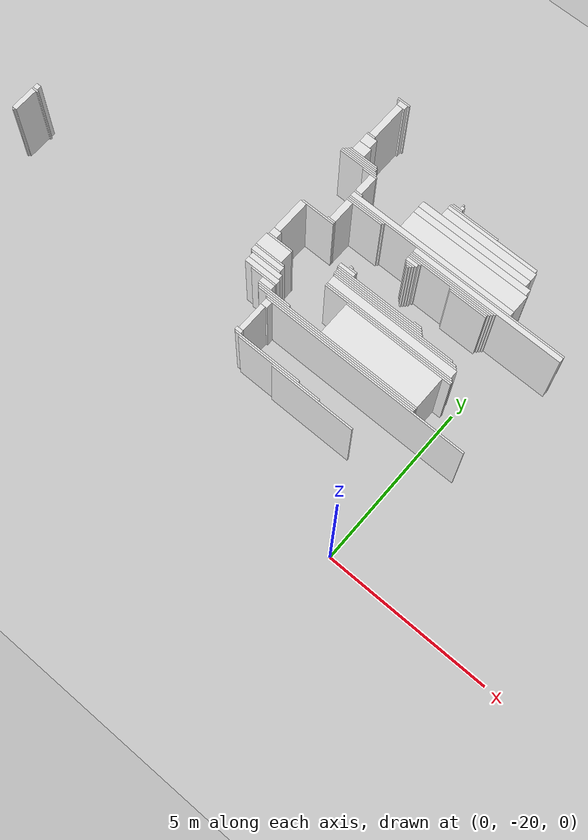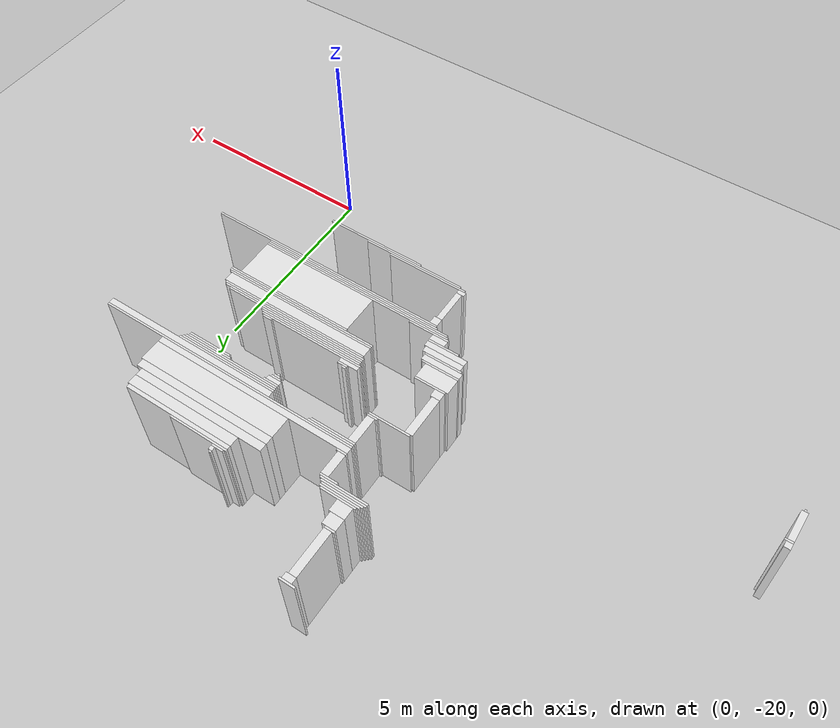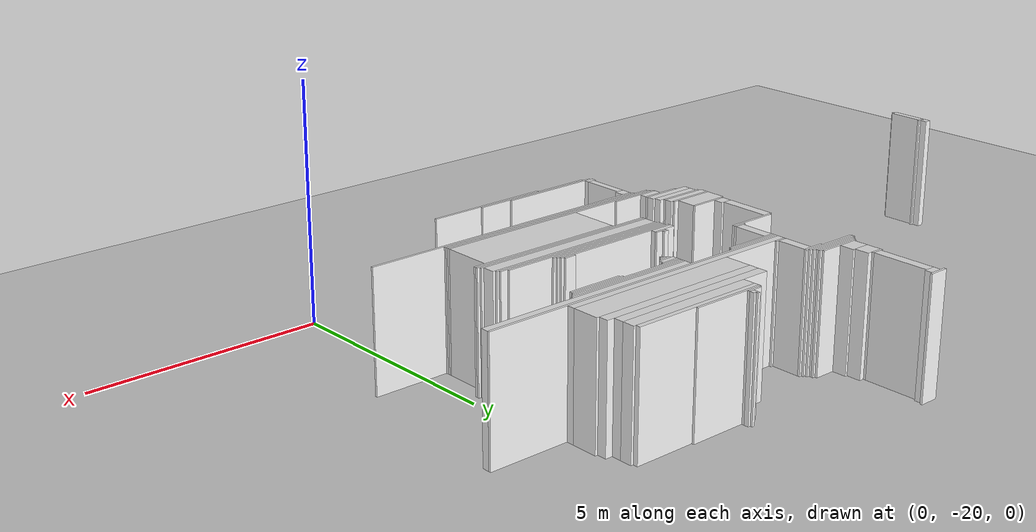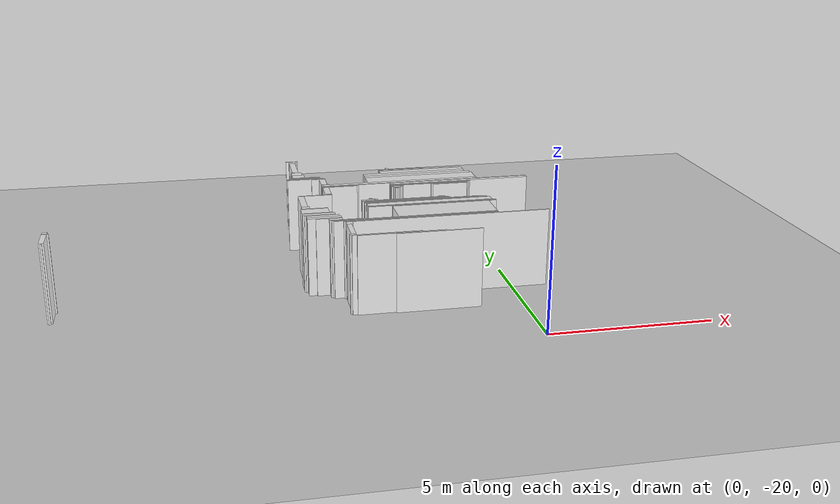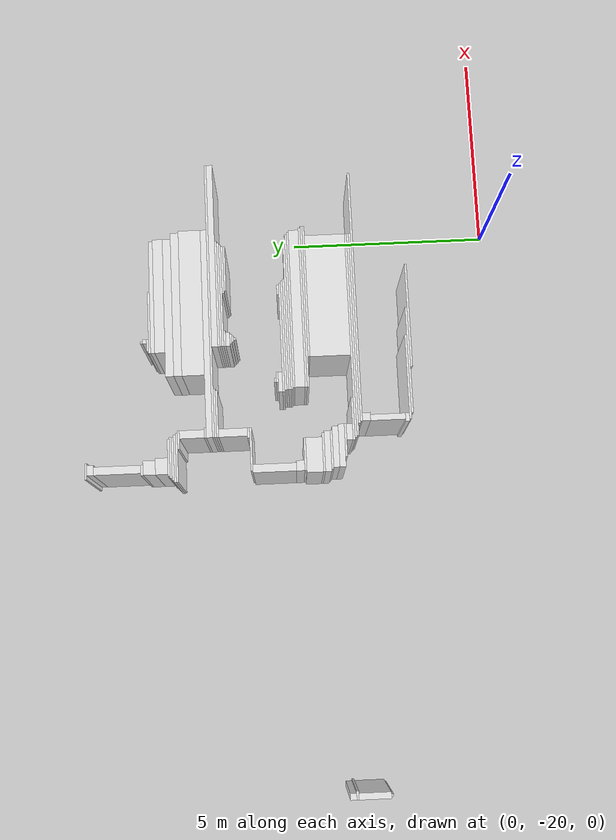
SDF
<sdf version="1.7">
 <world name="occupancy_map_world">
  <model name="ground_plane">
   <static>true</static>
   <link name="link">
    <collision name="collision">
     <geometry><plane><normal>0 0 1</normal><size>32.46 49.62000000000001</size></plane></geometry>
    </collision>
    <visual name="visual">
     <geometry><plane><normal>0 0 1</normal><size>32.46 49.62000000000001</size></plane></geometry>
     <material>
      <script><uri>file://media/materials/scripts/gazebo.material</uri><name>Gazebo/Grey</name></script>
     </material>
    </visual>
   </link>
  </model>
  <model name="wall_8">
   <static>true</static>
   <pose>-2.349999999999998 -14.8 1.25 0 0 0.0</pose>
   <link name="link">
    <collision name="collision"><geometry><box><size>3.95 0.05 2.5</size></box></geometry></collision>
    <visual name="visual">
     <geometry><box><size>3.95 0.05 2.5</size></box></geometry>
     <material>
      <script><uri>file://media/materials/scripts/gazebo.material</uri><name>Gazebo/White</name></script>
     </material>
    </visual>
   </link>
  </model>
  <model name="wall_84">
   <static>true</static>
   <pose>-5.124999999999998 -16.525 1.25 0 0 0.0</pose>
   <link name="link">
    <collision name="collision"><geometry><box><size>0.2 0.2 2.5</size></box></geometry></collision>
    <visual name="visual">
     <geometry><box><size>0.2 0.2 2.5</size></box></geometry>
     <material>
      <script><uri>file://media/materials/scripts/gazebo.material</uri><name>Gazebo/White</name></script>
     </material>
    </visual>
   </link>
  </model>
  <model name="wall_180">
   <static>true</static>
   <pose>-1.9249999999999972 -13.1 1.25 0 0 0.0</pose>
   <link name="link">
    <collision name="collision"><geometry><box><size>2.6 0.05 2.5</size></box></geometry></collision>
    <visual name="visual">
     <geometry><box><size>2.6 0.05 2.5</size></box></geometry>
     <material>
      <script><uri>file://media/materials/scripts/gazebo.material</uri><name>Gazebo/White</name></script>
     </material>
    </visual>
   </link>
  </model>
  <model name="wall_245">
   <static>true</static>
   <pose>-5.349999999999998 -12.6 1.25 0 0 0.0</pose>
   <link name="link">
    <collision name="collision"><geometry><box><size>0.25 0.05 2.5</size></box></geometry></collision>
    <visual name="visual">
     <geometry><box><size>0.25 0.05 2.5</size></box></geometry>
     <material>
      <script><uri>file://media/materials/scripts/gazebo.material</uri><name>Gazebo/White</name></script>
     </material>
    </visual>
   </link>
  </model>
  <model name="wall_247">
   <static>true</static>
   <pose>-5.374999999999998 -12.275 1.25 0 0 0.0</pose>
   <link name="link">
    <collision name="collision">
     <geometry><box><size>0.2 0.6000000000000001 2.5</size></box></geometry>
    </collision>
    <visual name="visual">
     <geometry><box><size>0.2 0.6000000000000001 2.5</size></box></geometry>
     <material>
      <script><uri>file://media/materials/scripts/gazebo.material</uri><name>Gazebo/White</name></script>
     </material>
    </visual>
   </link>
  </model>
  <model name="wall_248">
   <static>true</static>
   <pose>-5.374999999999998 -13.274999999999999 1.25 0 0 0.0</pose>
   <link name="link">
    <collision name="collision">
     <geometry><box><size>0.2 0.7000000000000001 2.5</size></box></geometry>
    </collision>
    <visual name="visual">
     <geometry><box><size>0.2 0.7000000000000001 2.5</size></box></geometry>
     <material>
      <script><uri>file://media/materials/scripts/gazebo.material</uri><name>Gazebo/White</name></script>
     </material>
    </visual>
   </link>
  </model>
  <model name="wall_546">
   <static>true</static>
   <pose>-5.149999999999999 -17.05 1.25 0 0 0.0</pose>
   <link name="link">
    <collision name="collision">
     <geometry><box><size>0.15000000000000002 0.8500000000000001 2.5</size></box></geometry>
    </collision>
    <visual name="visual">
     <geometry><box><size>0.15000000000000002 0.8500000000000001 2.5</size></box></geometry>
     <material>
      <script><uri>file://media/materials/scripts/gazebo.material</uri><name>Gazebo/White</name></script>
     </material>
    </visual>
   </link>
  </model>
  <model name="wall_554">
   <static>true</static>
   <pose>-5.174999999999997 -17.525 1.25 0 0 0.0</pose>
   <link name="link">
    <collision name="collision"><geometry><box><size>0.2 0.1 2.5</size></box></geometry></collision>
    <visual name="visual">
     <geometry><box><size>0.2 0.1 2.5</size></box></geometry>
     <material>
      <script><uri>file://media/materials/scripts/gazebo.material</uri><name>Gazebo/White</name></script>
     </material>
    </visual>
   </link>
  </model>
  <model name="wall_593">
   <static>true</static>
   <pose>-3.049999999999997 -11.1 1.25 0 0 0.0</pose>
   <link name="link">
    <collision name="collision"><geometry><box><size>0.05 0.05 2.5</size></box></geometry></collision>
    <visual name="visual">
     <geometry><box><size>0.05 0.05 2.5</size></box></geometry>
     <material>
      <script><uri>file://media/materials/scripts/gazebo.material</uri><name>Gazebo/White</name></script>
     </material>
    </visual>
   </link>
  </model>
  <model name="wall_594">
   <static>true</static>
   <pose>-3.049999999999997 -13.399999999999999 1.25 0 0 0.0</pose>
   <link name="link">
    <collision name="collision"><geometry><box><size>0.05 0.05 2.5</size></box></geometry></collision>
    <visual name="visual">
     <geometry><box><size>0.05 0.05 2.5</size></box></geometry>
     <material>
      <script><uri>file://media/materials/scripts/gazebo.material</uri><name>Gazebo/White</name></script>
     </material>
    </visual>
   </link>
  </model>
  <model name="wall_609">
   <static>true</static>
   <pose>-5.799999999999997 -13.7 1.25 0 0 0.0</pose>
   <link name="link">
    <collision name="collision"><geometry><box><size>1.05 0.05 2.5</size></box></geometry></collision>
    <visual name="visual">
     <geometry><box><size>1.05 0.05 2.5</size></box></geometry>
     <material>
      <script><uri>file://media/materials/scripts/gazebo.material</uri><name>Gazebo/White</name></script>
     </material>
    </visual>
   </link>
  </model>
  <model name="wall_610">
   <static>true</static>
   <pose>-5.799999999999997 -15.899999999999999 1.25 0 0 0.0</pose>
   <link name="link">
    <collision name="collision">
     <geometry><box><size>1.05 0.15000000000000002 2.5</size></box></geometry>
    </collision>
    <visual name="visual">
     <geometry><box><size>1.05 0.15000000000000002 2.5</size></box></geometry>
     <material>
      <script><uri>file://media/materials/scripts/gazebo.material</uri><name>Gazebo/White</name></script>
     </material>
    </visual>
   </link>
  </model>
  <model name="wall_611">
   <static>true</static>
   <pose>-6.174999999999997 -9.7 1.25 0 0 0.0</pose>
   <link name="link">
    <collision name="collision"><geometry><box><size>0.4 0.05 2.5</size></box></geometry></collision>
    <visual name="visual">
     <geometry><box><size>0.4 0.05 2.5</size></box></geometry>
     <material>
      <script><uri>file://media/materials/scripts/gazebo.material</uri><name>Gazebo/White</name></script>
     </material>
    </visual>
   </link>
  </model>
  <model name="wall_612">
   <static>true</static>
   <pose>-6.149999999999999 -9.799999999999999 1.25 0 0 0.0</pose>
   <link name="link">
    <collision name="collision">
     <geometry><box><size>0.25 0.15000000000000002 2.5</size></box></geometry>
    </collision>
    <visual name="visual">
     <geometry><box><size>0.25 0.15000000000000002 2.5</size></box></geometry>
     <material>
      <script><uri>file://media/materials/scripts/gazebo.material</uri><name>Gazebo/White</name></script>
     </material>
    </visual>
   </link>
  </model>
  <model name="wall_617">
   <static>true</static>
   <pose>-6.174999999999997 -10.45 1.25 0 0 0.0</pose>
   <link name="link">
    <collision name="collision">
     <geometry><box><size>0.2 1.1500000000000001 2.5</size></box></geometry>
    </collision>
    <visual name="visual">
     <geometry><box><size>0.2 1.1500000000000001 2.5</size></box></geometry>
     <material>
      <script><uri>file://media/materials/scripts/gazebo.material</uri><name>Gazebo/White</name></script>
     </material>
    </visual>
   </link>
  </model>
  <model name="wall_624">
   <static>true</static>
   <pose>-6.1999999999999975 -11.049999999999999 1.25 0 0 0.0</pose>
   <link name="link">
    <collision name="collision"><geometry><box><size>0.25 0.05 2.5</size></box></geometry></collision>
    <visual name="visual">
     <geometry><box><size>0.25 0.05 2.5</size></box></geometry>
     <material>
      <script><uri>file://media/materials/scripts/gazebo.material</uri><name>Gazebo/White</name></script>
     </material>
    </visual>
   </link>
  </model>
  <model name="wall_628">
   <static>true</static>
   <pose>-6.149999999999999 -11.225 1.25 0 0 0.0</pose>
   <link name="link">
    <collision name="collision">
     <geometry><box><size>0.35000000000000003 0.30000000000000004 2.5</size></box></geometry>
    </collision>
    <visual name="visual">
     <geometry><box><size>0.35000000000000003 0.30000000000000004 2.5</size></box></geometry>
     <material>
      <script><uri>file://media/materials/scripts/gazebo.material</uri><name>Gazebo/White</name></script>
     </material>
    </visual>
   </link>
  </model>
  <model name="wall_630">
   <static>true</static>
   <pose>-3.0249999999999986 -11.174999999999999 1.25 0 0 0.0</pose>
   <link name="link">
    <collision name="collision"><geometry><box><size>0.1 0.1 2.5</size></box></geometry></collision>
    <visual name="visual">
     <geometry><box><size>0.1 0.1 2.5</size></box></geometry>
     <material>
      <script><uri>file://media/materials/scripts/gazebo.material</uri><name>Gazebo/White</name></script>
     </material>
    </visual>
   </link>
  </model>
  <model name="wall_635">
   <static>true</static>
   <pose>-3.1249999999999982 -11.25 1.25 0 0 0.0</pose>
   <link name="link">
    <collision name="collision">
     <geometry><box><size>0.30000000000000004 0.05 2.5</size></box></geometry>
    </collision>
    <visual name="visual">
     <geometry><box><size>0.30000000000000004 0.05 2.5</size></box></geometry>
     <material>
      <script><uri>file://media/materials/scripts/gazebo.material</uri><name>Gazebo/White</name></script>
     </material>
    </visual>
   </link>
  </model>
  <model name="wall_636">
   <static>true</static>
   <pose>-2.549999999999997 -11.299999999999999 1.25 0 0 0.0</pose>
   <link name="link">
    <collision name="collision"><geometry><box><size>1.55 0.05 2.5</size></box></geometry></collision>
    <visual name="visual">
     <geometry><box><size>1.55 0.05 2.5</size></box></geometry>
     <material>
      <script><uri>file://media/materials/scripts/gazebo.material</uri><name>Gazebo/White</name></script>
     </material>
    </visual>
   </link>
  </model>
  <model name="wall_638">
   <static>true</static>
   <pose>-1.8999999999999986 -11.375 1.25 0 0 0.0</pose>
   <link name="link">
    <collision name="collision"><geometry><box><size>2.85 0.1 2.5</size></box></geometry></collision>
    <visual name="visual">
     <geometry><box><size>2.85 0.1 2.5</size></box></geometry>
     <material>
      <script><uri>file://media/materials/scripts/gazebo.material</uri><name>Gazebo/White</name></script>
     </material>
    </visual>
   </link>
  </model>
  <model name="wall_640">
   <static>true</static>
   <pose>-6.124999999999998 -11.525 1.25 0 0 0.0</pose>
   <link name="link">
    <collision name="collision">
     <geometry><box><size>0.4 0.30000000000000004 2.5</size></box></geometry>
    </collision>
    <visual name="visual">
     <geometry><box><size>0.4 0.30000000000000004 2.5</size></box></geometry>
     <material>
      <script><uri>file://media/materials/scripts/gazebo.material</uri><name>Gazebo/White</name></script>
     </material>
    </visual>
   </link>
  </model>
  <model name="wall_642">
   <static>true</static>
   <pose>-1.8749999999999964 -11.549999999999999 1.25 0 0 0.0</pose>
   <link name="link">
    <collision name="collision">
     <geometry><box><size>2.9000000000000004 0.25 2.5</size></box></geometry>
    </collision>
    <visual name="visual">
     <geometry><box><size>2.9000000000000004 0.25 2.5</size></box></geometry>
     <material>
      <script><uri>file://media/materials/scripts/gazebo.material</uri><name>Gazebo/White</name></script>
     </material>
    </visual>
   </link>
  </model>
  <model name="wall_646">
   <static>true</static>
   <pose>-5.924999999999997 -11.7 1.25 0 0 0.0</pose>
   <link name="link">
    <collision name="collision"><geometry><box><size>0.9 0.05 2.5</size></box></geometry></collision>
    <visual name="visual">
     <geometry><box><size>0.9 0.05 2.5</size></box></geometry>
     <material>
      <script><uri>file://media/materials/scripts/gazebo.material</uri><name>Gazebo/White</name></script>
     </material>
    </visual>
   </link>
  </model>
  <model name="wall_647">
   <static>true</static>
   <pose>-2.174999999999997 -11.775 1.25 0 0 0.0</pose>
   <link name="link">
    <collision name="collision"><geometry><box><size>3.5 0.2 2.5</size></box></geometry></collision>
    <visual name="visual">
     <geometry><box><size>3.5 0.2 2.5</size></box></geometry>
     <material>
      <script><uri>file://media/materials/scripts/gazebo.material</uri><name>Gazebo/White</name></script>
     </material>
    </visual>
   </link>
  </model>
  <model name="wall_648">
   <static>true</static>
   <pose>-5.924999999999997 -11.75 1.25 0 0 0.0</pose>
   <link name="link">
    <collision name="collision"><geometry><box><size>1.0 0.05 2.5</size></box></geometry></collision>
    <visual name="visual">
     <geometry><box><size>1.0 0.05 2.5</size></box></geometry>
     <material>
      <script><uri>file://media/materials/scripts/gazebo.material</uri><name>Gazebo/White</name></script>
     </material>
    </visual>
   </link>
  </model>
  <model name="wall_649">
   <static>true</static>
   <pose>-5.924999999999997 -15.55 1.25 0 0 0.0</pose>
   <link name="link">
    <collision name="collision">
     <geometry><box><size>1.0 0.15000000000000002 2.5</size></box></geometry>
    </collision>
    <visual name="visual">
     <geometry><box><size>1.0 0.15000000000000002 2.5</size></box></geometry>
     <material>
      <script><uri>file://media/materials/scripts/gazebo.material</uri><name>Gazebo/White</name></script>
     </material>
    </visual>
   </link>
  </model>
  <model name="wall_650">
   <static>true</static>
   <pose>-5.9499999999999975 -11.799999999999999 1.25 0 0 0.0</pose>
   <link name="link">
    <collision name="collision"><geometry><box><size>1.05 0.05 2.5</size></box></geometry></collision>
    <visual name="visual">
     <geometry><box><size>1.05 0.05 2.5</size></box></geometry>
     <material>
      <script><uri>file://media/materials/scripts/gazebo.material</uri><name>Gazebo/White</name></script>
     </material>
    </visual>
   </link>
  </model>
  <model name="wall_651">
   <static>true</static>
   <pose>-5.9499999999999975 -11.85 1.25 0 0 0.0</pose>
   <link name="link">
    <collision name="collision">
     <geometry><box><size>1.1500000000000001 0.05 2.5</size></box></geometry>
    </collision>
    <visual name="visual">
     <geometry><box><size>1.1500000000000001 0.05 2.5</size></box></geometry>
     <material>
      <script><uri>file://media/materials/scripts/gazebo.material</uri><name>Gazebo/White</name></script>
     </material>
    </visual>
   </link>
  </model>
  <model name="wall_652">
   <static>true</static>
   <pose>-5.924999999999997 -11.9 1.25 0 0 0.0</pose>
   <link name="link">
    <collision name="collision">
     <geometry><box><size>1.2000000000000002 0.05 2.5</size></box></geometry>
    </collision>
    <visual name="visual">
     <geometry><box><size>1.2000000000000002 0.05 2.5</size></box></geometry>
     <material>
      <script><uri>file://media/materials/scripts/gazebo.material</uri><name>Gazebo/White</name></script>
     </material>
    </visual>
   </link>
  </model>
  <model name="wall_653">
   <static>true</static>
   <pose>-2.099999999999998 -11.975 1.25 0 0 0.0</pose>
   <link name="link">
    <collision name="collision">
     <geometry><box><size>3.6500000000000004 0.2 2.5</size></box></geometry>
    </collision>
    <visual name="visual">
     <geometry><box><size>3.6500000000000004 0.2 2.5</size></box></geometry>
     <material>
      <script><uri>file://media/materials/scripts/gazebo.material</uri><name>Gazebo/White</name></script>
     </material>
    </visual>
   </link>
  </model>
  <model name="wall_654">
   <static>true</static>
   <pose>-5.499999999999998 -11.95 1.25 0 0 0.0</pose>
   <link name="link">
    <collision name="collision"><geometry><box><size>0.45 0.05 2.5</size></box></geometry></collision>
    <visual name="visual">
     <geometry><box><size>0.45 0.05 2.5</size></box></geometry>
     <material>
      <script><uri>file://media/materials/scripts/gazebo.material</uri><name>Gazebo/White</name></script>
     </material>
    </visual>
   </link>
  </model>
  <model name="wall_655">
   <static>true</static>
   <pose>-2.0749999999999975 -12.35 1.25 0 0 0.0</pose>
   <link name="link">
    <collision name="collision"><geometry><box><size>3.7 0.55 2.5</size></box></geometry></collision>
    <visual name="visual">
     <geometry><box><size>3.7 0.55 2.5</size></box></geometry>
     <material>
      <script><uri>file://media/materials/scripts/gazebo.material</uri><name>Gazebo/White</name></script>
     </material>
    </visual>
   </link>
  </model>
  <model name="wall_660">
   <static>true</static>
   <pose>-2.849999999999998 -12.7 1.25 0 0 0.0</pose>
   <link name="link">
    <collision name="collision">
     <geometry><box><size>5.25 0.15000000000000002 2.5</size></box></geometry>
    </collision>
    <visual name="visual">
     <geometry><box><size>5.25 0.15000000000000002 2.5</size></box></geometry>
     <material>
      <script><uri>file://media/materials/scripts/gazebo.material</uri><name>Gazebo/White</name></script>
     </material>
    </visual>
   </link>
  </model>
  <model name="wall_661">
   <static>true</static>
   <pose>-1.9999999999999982 -12.799999999999999 1.25 0 0 0.0</pose>
   <link name="link">
    <collision name="collision"><geometry><box><size>6.95 0.05 2.5</size></box></geometry></collision>
    <visual name="visual">
     <geometry><box><size>6.95 0.05 2.5</size></box></geometry>
     <material>
      <script><uri>file://media/materials/scripts/gazebo.material</uri><name>Gazebo/White</name></script>
     </material>
    </visual>
   </link>
  </model>
  <model name="wall_662">
   <static>true</static>
   <pose>-4.874999999999998 -12.85 1.25 0 0 0.0</pose>
   <link name="link">
    <collision name="collision">
     <geometry><box><size>1.2000000000000002 0.05 2.5</size></box></geometry>
    </collision>
    <visual name="visual">
     <geometry><box><size>1.2000000000000002 0.05 2.5</size></box></geometry>
     <material>
      <script><uri>file://media/materials/scripts/gazebo.material</uri><name>Gazebo/White</name></script>
     </material>
    </visual>
   </link>
  </model>
  <model name="wall_663">
   <static>true</static>
   <pose>-0.8749999999999964 -12.9 1.25 0 0 0.0</pose>
   <link name="link">
    <collision name="collision">
     <geometry><box><size>4.7 0.15000000000000002 2.5</size></box></geometry>
    </collision>
    <visual name="visual">
     <geometry><box><size>4.7 0.15000000000000002 2.5</size></box></geometry>
     <material>
      <script><uri>file://media/materials/scripts/gazebo.material</uri><name>Gazebo/White</name></script>
     </material>
    </visual>
   </link>
  </model>
  <model name="wall_664">
   <static>true</static>
   <pose>-4.899999999999999 -12.9 1.25 0 0 0.0</pose>
   <link name="link">
    <collision name="collision">
     <geometry><box><size>1.1500000000000001 0.05 2.5</size></box></geometry>
    </collision>
    <visual name="visual">
     <geometry><box><size>1.1500000000000001 0.05 2.5</size></box></geometry>
     <material>
      <script><uri>file://media/materials/scripts/gazebo.material</uri><name>Gazebo/White</name></script>
     </material>
    </visual>
   </link>
  </model>
  <model name="wall_665">
   <static>true</static>
   <pose>-1.8749999999999964 -13.0 1.25 0 0 0.0</pose>
   <link name="link">
    <collision name="collision"><geometry><box><size>2.7 0.05 2.5</size></box></geometry></collision>
    <visual name="visual">
     <geometry><box><size>2.7 0.05 2.5</size></box></geometry>
     <material>
      <script><uri>file://media/materials/scripts/gazebo.material</uri><name>Gazebo/White</name></script>
     </material>
    </visual>
   </link>
  </model>
  <model name="wall_667">
   <static>true</static>
   <pose>-1.8999999999999986 -13.05 1.25 0 0 0.0</pose>
   <link name="link">
    <collision name="collision">
     <geometry><box><size>2.6500000000000004 0.05 2.5</size></box></geometry>
    </collision>
    <visual name="visual">
     <geometry><box><size>2.6500000000000004 0.05 2.5</size></box></geometry>
     <material>
      <script><uri>file://media/materials/scripts/gazebo.material</uri><name>Gazebo/White</name></script>
     </material>
    </visual>
   </link>
  </model>
  <model name="wall_671">
   <static>true</static>
   <pose>-3.0249999999999986 -13.149999999999999 1.25 0 0 0.0</pose>
   <link name="link">
    <collision name="collision"><geometry><box><size>0.4 0.05 2.5</size></box></geometry></collision>
    <visual name="visual">
     <geometry><box><size>0.4 0.05 2.5</size></box></geometry>
     <material>
      <script><uri>file://media/materials/scripts/gazebo.material</uri><name>Gazebo/White</name></script>
     </material>
    </visual>
   </link>
  </model>
  <model name="wall_672">
   <static>true</static>
   <pose>-1.2749999999999986 -13.149999999999999 1.25 0 0 0.0</pose>
   <link name="link">
    <collision name="collision">
     <geometry><box><size>1.2000000000000002 0.05 2.5</size></box></geometry>
    </collision>
    <visual name="visual">
     <geometry><box><size>1.2000000000000002 0.05 2.5</size></box></geometry>
     <material>
      <script><uri>file://media/materials/scripts/gazebo.material</uri><name>Gazebo/White</name></script>
     </material>
    </visual>
   </link>
  </model>
  <model name="wall_674">
   <static>true</static>
   <pose>-3.049999999999997 -13.225 1.25 0 0 0.0</pose>
   <link name="link">
    <collision name="collision">
     <geometry><box><size>0.35000000000000003 0.1 2.5</size></box></geometry>
    </collision>
    <visual name="visual">
     <geometry><box><size>0.35000000000000003 0.1 2.5</size></box></geometry>
     <material>
      <script><uri>file://media/materials/scripts/gazebo.material</uri><name>Gazebo/White</name></script>
     </material>
    </visual>
   </link>
  </model>
  <model name="wall_675">
   <static>true</static>
   <pose>-1.2499999999999964 -13.2 1.25 0 0 0.0</pose>
   <link name="link">
    <collision name="collision">
     <geometry><box><size>1.1500000000000001 0.05 2.5</size></box></geometry>
    </collision>
    <visual name="visual">
     <geometry><box><size>1.1500000000000001 0.05 2.5</size></box></geometry>
     <material>
      <script><uri>file://media/materials/scripts/gazebo.material</uri><name>Gazebo/White</name></script>
     </material>
    </visual>
   </link>
  </model>
  <model name="wall_678">
   <static>true</static>
   <pose>-3.049999999999997 -13.3 1.25 0 0 0.0</pose>
   <link name="link">
    <collision name="collision"><geometry><box><size>0.25 0.05 2.5</size></box></geometry></collision>
    <visual name="visual">
     <geometry><box><size>0.25 0.05 2.5</size></box></geometry>
     <material>
      <script><uri>file://media/materials/scripts/gazebo.material</uri><name>Gazebo/White</name></script>
     </material>
    </visual>
   </link>
  </model>
  <model name="wall_679">
   <static>true</static>
   <pose>-3.049999999999997 -13.35 1.25 0 0 0.0</pose>
   <link name="link">
    <collision name="collision">
     <geometry><box><size>0.15000000000000002 0.05 2.5</size></box></geometry>
    </collision>
    <visual name="visual">
     <geometry><box><size>0.15000000000000002 0.05 2.5</size></box></geometry>
     <material>
      <script><uri>file://media/materials/scripts/gazebo.material</uri><name>Gazebo/White</name></script>
     </material>
    </visual>
   </link>
  </model>
  <model name="wall_680">
   <static>true</static>
   <pose>-5.399999999999999 -13.649999999999999 1.25 0 0 0.0</pose>
   <link name="link">
    <collision name="collision"><geometry><box><size>0.25 0.05 2.5</size></box></geometry></collision>
    <visual name="visual">
     <geometry><box><size>0.25 0.05 2.5</size></box></geometry>
     <material>
      <script><uri>file://media/materials/scripts/gazebo.material</uri><name>Gazebo/White</name></script>
     </material>
    </visual>
   </link>
  </model>
  <model name="wall_681">
   <static>true</static>
   <pose>-6.274999999999999 -14.25 1.25 0 0 0.0</pose>
   <link name="link">
    <collision name="collision"><geometry><box><size>0.2 1.05 2.5</size></box></geometry></collision>
    <visual name="visual">
     <geometry><box><size>0.2 1.05 2.5</size></box></geometry>
     <material>
      <script><uri>file://media/materials/scripts/gazebo.material</uri><name>Gazebo/White</name></script>
     </material>
    </visual>
   </link>
  </model>
  <model name="wall_683">
   <static>true</static>
   <pose>-4.124999999999998 -14.35 1.25 0 0 0.0</pose>
   <link name="link">
    <collision name="collision"><geometry><box><size>0.1 0.05 2.5</size></box></geometry></collision>
    <visual name="visual">
     <geometry><box><size>0.1 0.05 2.5</size></box></geometry>
     <material>
      <script><uri>file://media/materials/scripts/gazebo.material</uri><name>Gazebo/White</name></script>
     </material>
    </visual>
   </link>
  </model>
  <model name="wall_684">
   <static>true</static>
   <pose>-4.049999999999997 -14.399999999999999 1.25 0 0 0.0</pose>
   <link name="link">
    <collision name="collision"><geometry><box><size>0.25 0.05 2.5</size></box></geometry></collision>
    <visual name="visual">
     <geometry><box><size>0.25 0.05 2.5</size></box></geometry>
     <material>
      <script><uri>file://media/materials/scripts/gazebo.material</uri><name>Gazebo/White</name></script>
     </material>
    </visual>
   </link>
  </model>
  <model name="wall_685">
   <static>true</static>
   <pose>-4.174999999999997 -14.475 1.25 0 0 0.0</pose>
   <link name="link">
    <collision name="collision"><geometry><box><size>0.5 0.1 2.5</size></box></geometry></collision>
    <visual name="visual">
     <geometry><box><size>0.5 0.1 2.5</size></box></geometry>
     <material>
      <script><uri>file://media/materials/scripts/gazebo.material</uri><name>Gazebo/White</name></script>
     </material>
    </visual>
   </link>
  </model>
  <model name="wall_686">
   <static>true</static>
   <pose>-1.8499999999999979 -14.5 1.25 0 0 0.0</pose>
   <link name="link">
    <collision name="collision"><geometry><box><size>0.25 0.05 2.5</size></box></geometry></collision>
    <visual name="visual">
     <geometry><box><size>0.25 0.05 2.5</size></box></geometry>
     <material>
      <script><uri>file://media/materials/scripts/gazebo.material</uri><name>Gazebo/White</name></script>
     </material>
    </visual>
   </link>
  </model>
  <model name="wall_687">
   <static>true</static>
   <pose>-3.049999999999997 -14.55 1.25 0 0 0.0</pose>
   <link name="link">
    <collision name="collision"><geometry><box><size>2.75 0.05 2.5</size></box></geometry></collision>
    <visual name="visual">
     <geometry><box><size>2.75 0.05 2.5</size></box></geometry>
     <material>
      <script><uri>file://media/materials/scripts/gazebo.material</uri><name>Gazebo/White</name></script>
     </material>
    </visual>
   </link>
  </model>
  <model name="wall_688">
   <static>true</static>
   <pose>-2.9999999999999982 -14.6 1.25 0 0 0.0</pose>
   <link name="link">
    <collision name="collision"><geometry><box><size>2.75 0.05 2.5</size></box></geometry></collision>
    <visual name="visual">
     <geometry><box><size>2.75 0.05 2.5</size></box></geometry>
     <material>
      <script><uri>file://media/materials/scripts/gazebo.material</uri><name>Gazebo/White</name></script>
     </material>
    </visual>
   </link>
  </model>
  <model name="wall_689">
   <static>true</static>
   <pose>-2.974999999999998 -14.649999999999999 1.25 0 0 0.0</pose>
   <link name="link">
    <collision name="collision">
     <geometry><box><size>2.8000000000000003 0.05 2.5</size></box></geometry>
    </collision>
    <visual name="visual">
     <geometry><box><size>2.8000000000000003 0.05 2.5</size></box></geometry>
     <material>
      <script><uri>file://media/materials/scripts/gazebo.material</uri><name>Gazebo/White</name></script>
     </material>
    </visual>
   </link>
  </model>
  <model name="wall_690">
   <static>true</static>
   <pose>-2.474999999999998 -14.7 1.25 0 0 0.0</pose>
   <link name="link">
    <collision name="collision">
     <geometry><box><size>3.8000000000000003 0.05 2.5</size></box></geometry>
    </collision>
    <visual name="visual">
     <geometry><box><size>3.8000000000000003 0.05 2.5</size></box></geometry>
     <material>
      <script><uri>file://media/materials/scripts/gazebo.material</uri><name>Gazebo/White</name></script>
     </material>
    </visual>
   </link>
  </model>
  <model name="wall_691">
   <static>true</static>
   <pose>-2.3999999999999986 -14.75 1.25 0 0 0.0</pose>
   <link name="link">
    <collision name="collision"><geometry><box><size>3.95 0.05 2.5</size></box></geometry></collision>
    <visual name="visual">
     <geometry><box><size>3.95 0.05 2.5</size></box></geometry>
     <material>
      <script><uri>file://media/materials/scripts/gazebo.material</uri><name>Gazebo/White</name></script>
     </material>
    </visual>
   </link>
  </model>
  <model name="wall_692">
   <static>true</static>
   <pose>-6.249999999999998 -14.875 1.25 0 0 0.0</pose>
   <link name="link">
    <collision name="collision"><geometry><box><size>0.25 0.2 2.5</size></box></geometry></collision>
    <visual name="visual">
     <geometry><box><size>0.25 0.2 2.5</size></box></geometry>
     <material>
      <script><uri>file://media/materials/scripts/gazebo.material</uri><name>Gazebo/White</name></script>
     </material>
    </visual>
   </link>
  </model>
  <model name="wall_693">
   <static>true</static>
   <pose>-2.3249999999999975 -14.95 1.25 0 0 0.0</pose>
   <link name="link">
    <collision name="collision"><geometry><box><size>4.0 0.25 2.5</size></box></geometry></collision>
    <visual name="visual">
     <geometry><box><size>4.0 0.25 2.5</size></box></geometry>
     <material>
      <script><uri>file://media/materials/scripts/gazebo.material</uri><name>Gazebo/White</name></script>
     </material>
    </visual>
   </link>
  </model>
  <model name="wall_694">
   <static>true</static>
   <pose>-5.974999999999998 -15.0 1.25 0 0 0.0</pose>
   <link name="link">
    <collision name="collision"><geometry><box><size>0.8 0.05 2.5</size></box></geometry></collision>
    <visual name="visual">
     <geometry><box><size>0.8 0.05 2.5</size></box></geometry>
     <material>
      <script><uri>file://media/materials/scripts/gazebo.material</uri><name>Gazebo/White</name></script>
     </material>
    </visual>
   </link>
  </model>
  <model name="wall_695">
   <static>true</static>
   <pose>-5.999999999999998 -15.225 1.25 0 0 0.0</pose>
   <link name="link">
    <collision name="collision">
     <geometry><box><size>0.8500000000000001 0.4 2.5</size></box></geometry>
    </collision>
    <visual name="visual">
     <geometry><box><size>0.8500000000000001 0.4 2.5</size></box></geometry>
     <material>
      <script><uri>file://media/materials/scripts/gazebo.material</uri><name>Gazebo/White</name></script>
     </material>
    </visual>
   </link>
  </model>
  <model name="wall_696">
   <static>true</static>
   <pose>-2.299999999999997 -15.1 1.25 0 0 0.0</pose>
   <link name="link">
    <collision name="collision"><geometry><box><size>4.05 0.05 2.5</size></box></geometry></collision>
    <visual name="visual">
     <geometry><box><size>4.05 0.05 2.5</size></box></geometry>
     <material>
      <script><uri>file://media/materials/scripts/gazebo.material</uri><name>Gazebo/White</name></script>
     </material>
    </visual>
   </link>
  </model>
  <model name="wall_697">
   <static>true</static>
   <pose>-2.2749999999999986 -15.149999999999999 1.25 0 0 0.0</pose>
   <link name="link">
    <collision name="collision">
     <geometry><box><size>4.1000000000000005 0.05 2.5</size></box></geometry>
    </collision>
    <visual name="visual">
     <geometry><box><size>4.1000000000000005 0.05 2.5</size></box></geometry>
     <material>
      <script><uri>file://media/materials/scripts/gazebo.material</uri><name>Gazebo/White</name></script>
     </material>
    </visual>
   </link>
  </model>
  <model name="wall_698">
   <static>true</static>
   <pose>-1.8999999999999986 -15.2 1.25 0 0 0.0</pose>
   <link name="link">
    <collision name="collision"><geometry><box><size>3.35 0.05 2.5</size></box></geometry></collision>
    <visual name="visual">
     <geometry><box><size>3.35 0.05 2.5</size></box></geometry>
     <material>
      <script><uri>file://media/materials/scripts/gazebo.material</uri><name>Gazebo/White</name></script>
     </material>
    </visual>
   </link>
  </model>
  <model name="wall_699">
   <static>true</static>
   <pose>-2.0249999999999986 -15.725 1.25 0 0 0.0</pose>
   <link name="link">
    <collision name="collision"><geometry><box><size>3.1 1.0 2.5</size></box></geometry></collision>
    <visual name="visual">
     <geometry><box><size>3.1 1.0 2.5</size></box></geometry>
     <material>
      <script><uri>file://media/materials/scripts/gazebo.material</uri><name>Gazebo/White</name></script>
     </material>
    </visual>
   </link>
  </model>
  <model name="wall_702">
   <static>true</static>
   <pose>-5.9499999999999975 -15.45 1.25 0 0 0.0</pose>
   <link name="link">
    <collision name="collision">
     <geometry><box><size>0.9500000000000001 0.05 2.5</size></box></geometry>
    </collision>
    <visual name="visual">
     <geometry><box><size>0.9500000000000001 0.05 2.5</size></box></geometry>
     <material>
      <script><uri>file://media/materials/scripts/gazebo.material</uri><name>Gazebo/White</name></script>
     </material>
    </visual>
   </link>
  </model>
  <model name="wall_703">
   <static>true</static>
   <pose>-5.899999999999999 -15.649999999999999 1.25 0 0 0.0</pose>
   <link name="link">
    <collision name="collision">
     <geometry><box><size>0.9500000000000001 0.05 2.5</size></box></geometry>
    </collision>
    <visual name="visual">
     <geometry><box><size>0.9500000000000001 0.05 2.5</size></box></geometry>
     <material>
      <script><uri>file://media/materials/scripts/gazebo.material</uri><name>Gazebo/White</name></script>
     </material>
    </visual>
   </link>
  </model>
  <model name="wall_704">
   <static>true</static>
   <pose>-13.95 -15.75 1.25 0 0 0.0</pose>
   <link name="link">
    <collision name="collision">
     <geometry><box><size>0.15000000000000002 0.15000000000000002 2.5</size></box></geometry>
    </collision>
    <visual name="visual">
     <geometry><box><size>0.15000000000000002 0.15000000000000002 2.5</size></box></geometry>
     <material>
      <script><uri>file://media/materials/scripts/gazebo.material</uri><name>Gazebo/White</name></script>
     </material>
    </visual>
   </link>
  </model>
  <model name="wall_705">
   <static>true</static>
   <pose>-13.95 -16.25 1.25 0 0 0.0</pose>
   <link name="link">
    <collision name="collision">
     <geometry><box><size>0.15000000000000002 0.75 2.5</size></box></geometry>
    </collision>
    <visual name="visual">
     <geometry><box><size>0.15000000000000002 0.75 2.5</size></box></geometry>
     <material>
      <script><uri>file://media/materials/scripts/gazebo.material</uri><name>Gazebo/White</name></script>
     </material>
    </visual>
   </link>
  </model>
  <model name="wall_706">
   <static>true</static>
   <pose>-5.8249999999999975 -15.75 1.25 0 0 0.0</pose>
   <link name="link">
    <collision name="collision">
     <geometry><box><size>1.0 0.15000000000000002 2.5</size></box></geometry>
    </collision>
    <visual name="visual">
     <geometry><box><size>1.0 0.15000000000000002 2.5</size></box></geometry>
     <material>
      <script><uri>file://media/materials/scripts/gazebo.material</uri><name>Gazebo/White</name></script>
     </material>
    </visual>
   </link>
  </model>
  <model name="wall_707">
   <static>true</static>
   <pose>-13.924999999999999 -15.85 1.25 0 0 0.0</pose>
   <link name="link">
    <collision name="collision"><geometry><box><size>0.2 0.05 2.5</size></box></geometry></collision>
    <visual name="visual">
     <geometry><box><size>0.2 0.05 2.5</size></box></geometry>
     <material>
      <script><uri>file://media/materials/scripts/gazebo.material</uri><name>Gazebo/White</name></script>
     </material>
    </visual>
   </link>
  </model>
  <model name="wall_708">
   <static>true</static>
   <pose>-5.674999999999997 -16.0 1.25 0 0 0.0</pose>
   <link name="link">
    <collision name="collision"><geometry><box><size>0.8 0.05 2.5</size></box></geometry></collision>
    <visual name="visual">
     <geometry><box><size>0.8 0.05 2.5</size></box></geometry>
     <material>
      <script><uri>file://media/materials/scripts/gazebo.material</uri><name>Gazebo/White</name></script>
     </material>
    </visual>
   </link>
  </model>
  <model name="wall_709">
   <static>true</static>
   <pose>-5.474999999999998 -16.1 1.25 0 0 0.0</pose>
   <link name="link">
    <collision name="collision">
     <geometry><box><size>0.4 0.15000000000000002 2.5</size></box></geometry>
    </collision>
    <visual name="visual">
     <geometry><box><size>0.4 0.15000000000000002 2.5</size></box></geometry>
     <material>
      <script><uri>file://media/materials/scripts/gazebo.material</uri><name>Gazebo/White</name></script>
     </material>
    </visual>
   </link>
  </model>
  <model name="wall_713">
   <static>true</static>
   <pose>-5.149999999999999 -16.2 1.25 0 0 0.0</pose>
   <link name="link">
    <collision name="collision"><geometry><box><size>1.05 0.05 2.5</size></box></geometry></collision>
    <visual name="visual">
     <geometry><box><size>1.05 0.05 2.5</size></box></geometry>
     <material>
      <script><uri>file://media/materials/scripts/gazebo.material</uri><name>Gazebo/White</name></script>
     </material>
    </visual>
   </link>
  </model>
  <model name="wall_715">
   <static>true</static>
   <pose>-3.049999999999997 -16.25 1.25 0 0 0.0</pose>
   <link name="link">
    <collision name="collision"><geometry><box><size>5.15 0.05 2.5</size></box></geometry></collision>
    <visual name="visual">
     <geometry><box><size>5.15 0.05 2.5</size></box></geometry>
     <material>
      <script><uri>file://media/materials/scripts/gazebo.material</uri><name>Gazebo/White</name></script>
     </material>
    </visual>
   </link>
  </model>
  <model name="wall_717">
   <static>true</static>
   <pose>-3.0249999999999986 -16.3 1.25 0 0 0.0</pose>
   <link name="link">
    <collision name="collision">
     <geometry><box><size>5.1000000000000005 0.05 2.5</size></box></geometry>
    </collision>
    <visual name="visual">
     <geometry><box><size>5.1000000000000005 0.05 2.5</size></box></geometry>
     <material>
      <script><uri>file://media/materials/scripts/gazebo.material</uri><name>Gazebo/White</name></script>
     </material>
    </visual>
   </link>
  </model>
  <model name="wall_718">
   <static>true</static>
   <pose>-2.8749999999999982 -16.35 1.25 0 0 0.0</pose>
   <link name="link">
    <collision name="collision">
     <geometry><box><size>4.800000000000001 0.05 2.5</size></box></geometry>
    </collision>
    <visual name="visual">
     <geometry><box><size>4.800000000000001 0.05 2.5</size></box></geometry>
     <material>
      <script><uri>file://media/materials/scripts/gazebo.material</uri><name>Gazebo/White</name></script>
     </material>
    </visual>
   </link>
  </model>
  <model name="wall_719">
   <static>true</static>
   <pose>-2.049999999999997 -16.4 1.25 0 0 0.0</pose>
   <link name="link">
    <collision name="collision">
     <geometry><box><size>6.3500000000000005 0.05 2.5</size></box></geometry>
    </collision>
    <visual name="visual">
     <geometry><box><size>6.3500000000000005 0.05 2.5</size></box></geometry>
     <material>
      <script><uri>file://media/materials/scripts/gazebo.material</uri><name>Gazebo/White</name></script>
     </material>
    </visual>
   </link>
  </model>
  <model name="wall_724">
   <static>true</static>
   <pose>-13.95 -16.65 1.25 0 0 0.0</pose>
   <link name="link">
    <collision name="collision"><geometry><box><size>0.05 0.05 2.5</size></box></geometry></collision>
    <visual name="visual">
     <geometry><box><size>0.05 0.05 2.5</size></box></geometry>
     <material>
      <script><uri>file://media/materials/scripts/gazebo.material</uri><name>Gazebo/White</name></script>
     </material>
    </visual>
   </link>
  </model>
  <model name="wall_725">
   <static>true</static>
   <pose>-4.174999999999997 -17.6 1.25 0 0 0.0</pose>
   <link name="link">
    <collision name="collision"><geometry><box><size>2.1 0.05 2.5</size></box></geometry></collision>
    <visual name="visual">
     <geometry><box><size>2.1 0.05 2.5</size></box></geometry>
     <material>
      <script><uri>file://media/materials/scripts/gazebo.material</uri><name>Gazebo/White</name></script>
     </material>
    </visual>
   </link>
  </model>
  <model name="wall_726">
   <static>true</static>
   <pose>-3.7499999999999982 -17.65 1.25 0 0 0.0</pose>
   <link name="link">
    <collision name="collision">
     <geometry><box><size>2.6500000000000004 0.05 2.5</size></box></geometry>
    </collision>
    <visual name="visual">
     <geometry><box><size>2.6500000000000004 0.05 2.5</size></box></geometry>
     <material>
      <script><uri>file://media/materials/scripts/gazebo.material</uri><name>Gazebo/White</name></script>
     </material>
    </visual>
   </link>
  </model>
  <model name="wall_727">
   <static>true</static>
   <pose>-2.6249999999999982 -17.7 1.25 0 0 0.0</pose>
   <link name="link">
    <collision name="collision"><geometry><box><size>2.6 0.05 2.5</size></box></geometry></collision>
    <visual name="visual">
     <geometry><box><size>2.6 0.05 2.5</size></box></geometry>
     <material>
      <script><uri>file://media/materials/scripts/gazebo.material</uri><name>Gazebo/White</name></script>
     </material>
    </visual>
   </link>
  </model>
  <model name="wall_731">
   <static>true</static>
   <pose>-13.95 -16.65 1.25 0 0 0.0</pose>
   <link name="link">
    <collision name="collision"><geometry><box><size>0.05 0.05 2.5</size></box></geometry></collision>
    <visual name="visual">
     <geometry><box><size>0.05 0.05 2.5</size></box></geometry>
     <material>
      <script><uri>file://media/materials/scripts/gazebo.material</uri><name>Gazebo/White</name></script>
     </material>
    </visual>
   </link>
  </model>
  <model name="wall_737">
   <static>true</static>
   <pose>-3.049999999999997 -11.1 1.25 0 0 0.0</pose>
   <link name="link">
    <collision name="collision"><geometry><box><size>0.05 0.05 2.5</size></box></geometry></collision>
    <visual name="visual">
     <geometry><box><size>0.05 0.05 2.5</size></box></geometry>
     <material>
      <script><uri>file://media/materials/scripts/gazebo.material</uri><name>Gazebo/White</name></script>
     </material>
    </visual>
   </link>
  </model>
  <model name="wall_738">
   <static>true</static>
   <pose>-3.049999999999997 -13.399999999999999 1.25 0 0 0.0</pose>
   <link name="link">
    <collision name="collision"><geometry><box><size>0.05 0.05 2.5</size></box></geometry></collision>
    <visual name="visual">
     <geometry><box><size>0.05 0.05 2.5</size></box></geometry>
     <material>
      <script><uri>file://media/materials/scripts/gazebo.material</uri><name>Gazebo/White</name></script>
     </material>
    </visual>
   </link>
  </model>
 </world>
</sdf>
